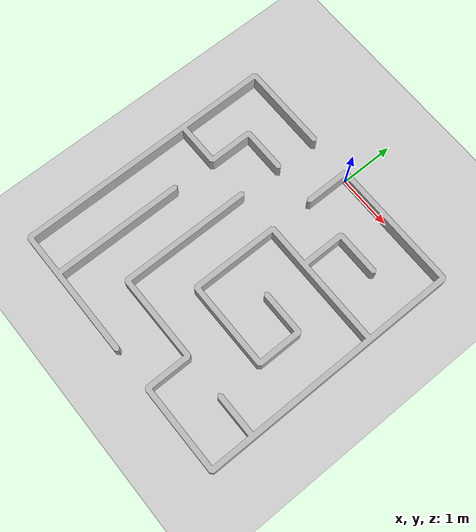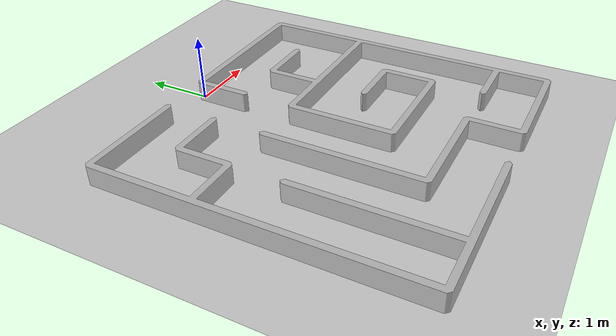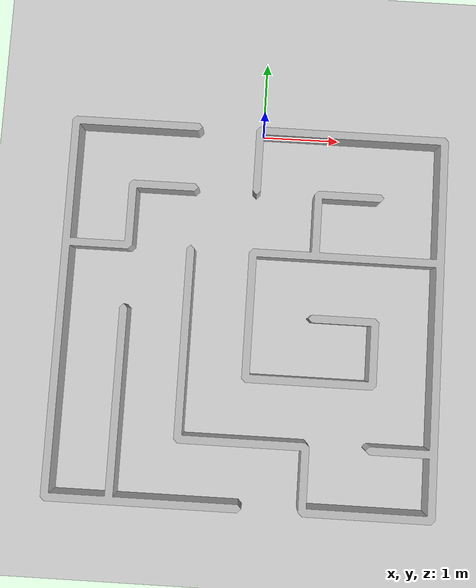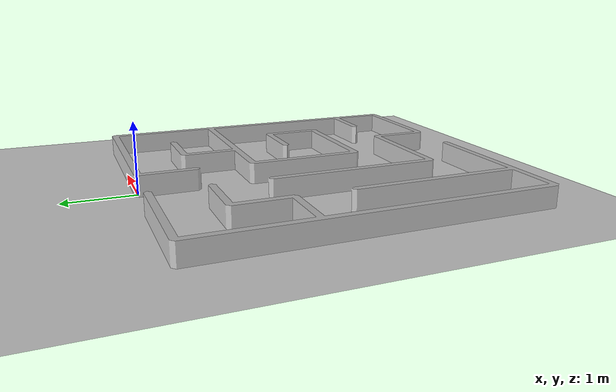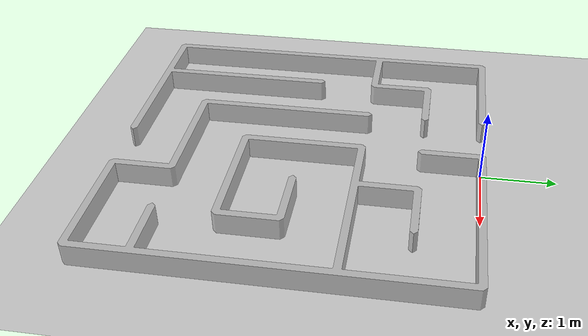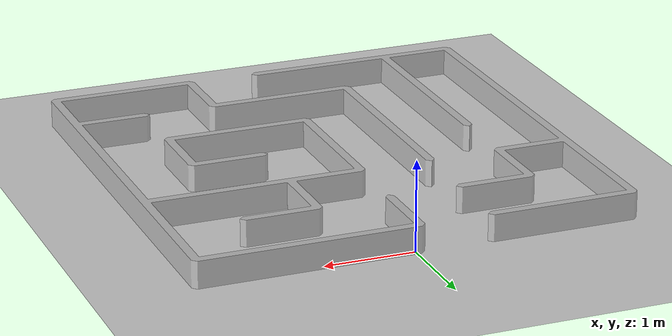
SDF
<?xml version="1.0"?>
<sdf version="1.6">
  <world name="default">

    <include>
      <uri>model://ground_plane</uri>
    </include>

    <include>
      <uri>model://sun</uri>
    </include>

    <include>
      <uri>model://my_png_model</uri>
      <pose>0 0 0 0 0 0</pose>
    </include>

    <scene>
      <shadows>false</shadows>
    </scene>

    <gui fullscreen='0'>
      <camera name='user_camera'>
        <pose frame=''>0.319654 -0.235002 9.29441 0 1.5138 0.009599</pose>
        <view_controller>orbit</view_controller>
        <projection_type>perspective</projection_type>
      </camera>
    </gui>

    <physics type="ode">
      <real_time_update_rate>1000.0</real_time_update_rate>
      <max_step_size>0.001</max_step_size>
      <real_time_factor>1</real_time_factor>
      <ode>
        <solver>
          <type>quick</type>
          <iters>150</iters>
          <precon_iters>0</precon_iters>
          <sor>1.400000</sor>
          <use_dynamic_moi_rescaling>1</use_dynamic_moi_rescaling>
        </solver>
        <constraints>
          <cfm>0.00001</cfm>
          <erp>0.2</erp>
          <contact_max_correcting_vel>2000.000000</contact_max_correcting_vel>
          <contact_surface_layer>0.01000</contact_surface_layer>
        </constraints>
      </ode>
    </physics>

  </world>
</sdf>

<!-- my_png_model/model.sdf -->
<sdf version="1.6">
  <model name="my_png_model">
    <link name="link">
      <inertial>
        <mass>1</mass>
        <inertia>
          <ixx>0.0</ixx>
          <ixy>0.0</ixy>
          <ixz>0.0</ixz>
          <iyy>0.0</iyy>
          <iyz>0.0</iyz>
          <izz>0.0</izz>
        </inertia>
      </inertial>
      <collision name="collision">
        <pose>-2.5 0 0 0 0 0</pose>
        <geometry>
          <mesh>
            <uri>model://my_png_model/map.stl</uri>
            <scale>0.5 0.5 3</scale>
          </mesh>
        </geometry>
      </collision>
      <visual name="visual">
        <pose>-2.5 0 0 0 0 0</pose>
        <geometry>
          <mesh>
            <uri>model://my_png_model/map.stl</uri>
            <scale>0.5 0.5 3</scale>
          </mesh>
        </geometry>
      </visual>
    </link>
    <static>1</static>
  </model>
</sdf>
